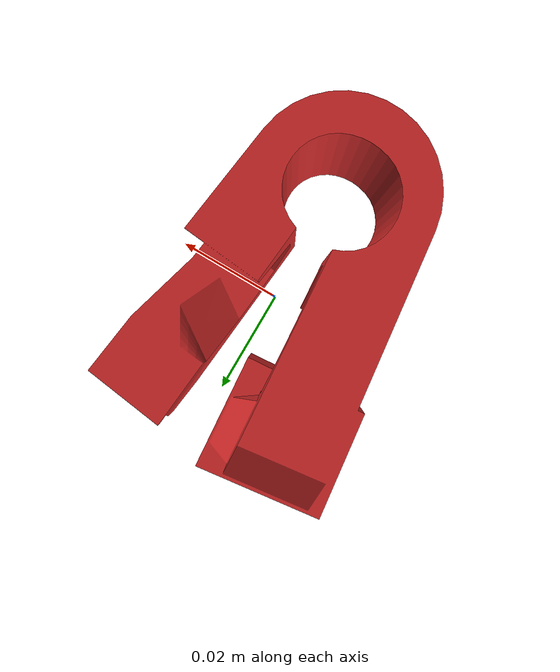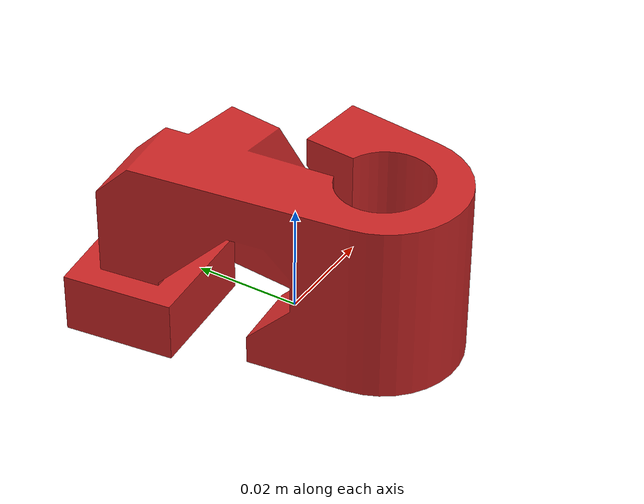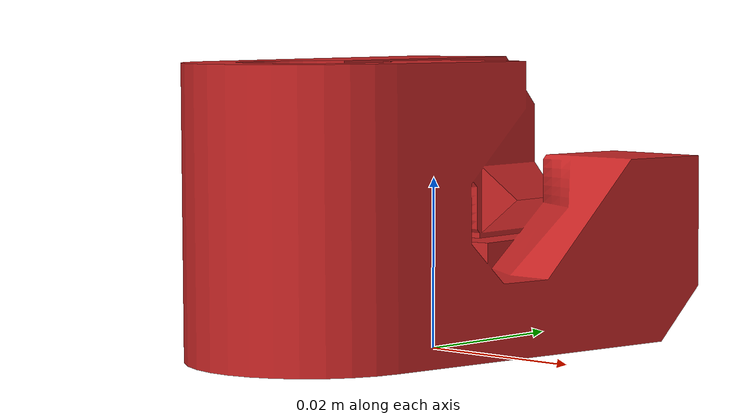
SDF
<?xml version="1.0" ?>
<sdf version="1.5">
  <model name="bar_clamp">
    <static>false</static>
    <link name="bar_clamp_link">
      <self_collide>true</self_collide>

      <collision name="collision">
        <geometry>
          <mesh>
            <uri>model://mahler_obj/bar_clamp/meshes/bar_clamp.dae</uri>
            <scale>0.6 0.6 0.6</scale>
          </mesh>
        </geometry>
      </collision>

      <visual name="visual">
        <geometry>
          <mesh>
            <uri>model://mahler_obj/bar_clamp/meshes/bar_clamp.dae</uri>
            <scale>0.6 0.6 0.6</scale>
          </mesh>
        </geometry>
        <material>
          <script>
            <uri>file://media/materials/scripts/gazebo.material</uri>
            <name>Gazebo/Red</name>
          </script>
        </material>
      </visual>
    </link>

  </model>
</sdf>
